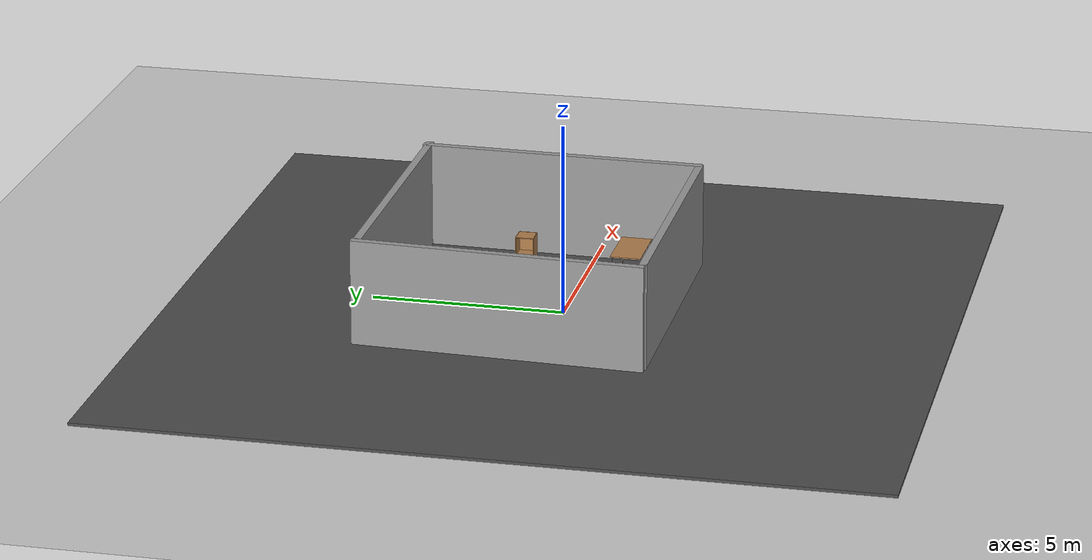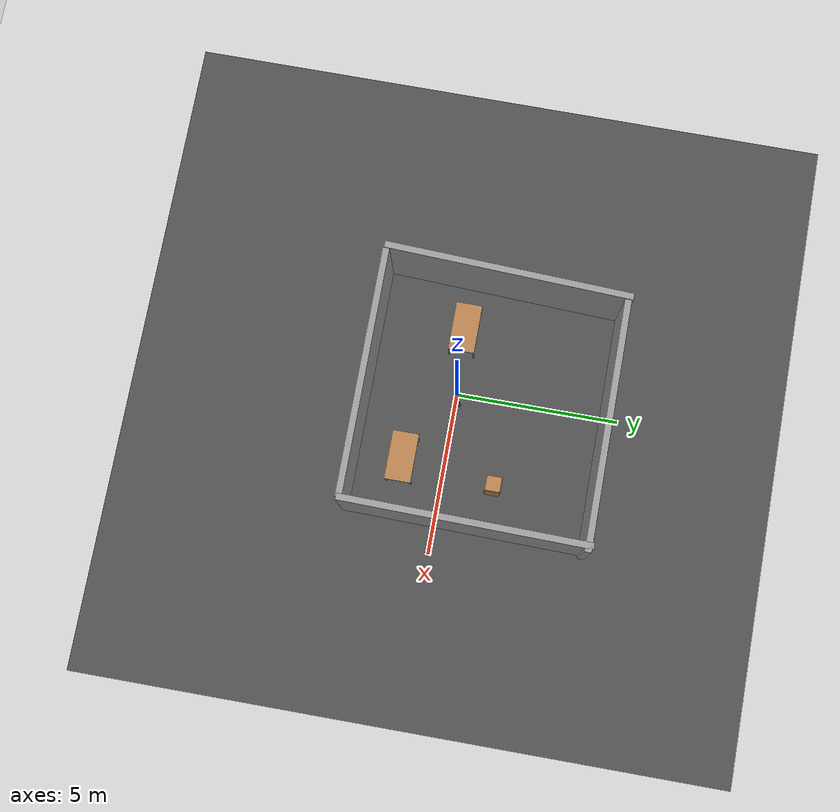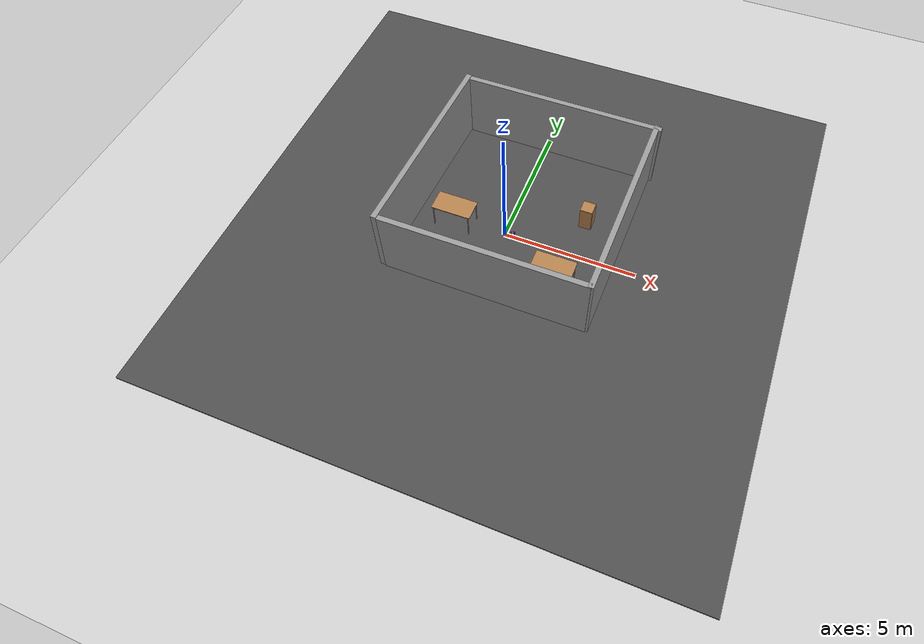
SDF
<sdf version="1.7">
 <world name="default">
  <light name="sun" type="directional">
   <pose>0 0 10 0 -0 0</pose>
   <diffuse>0.8 0.8 0.8 1</diffuse>
   <specular>0.2 0.2 0.2 1</specular>
   <attenuation>
    <range>1000</range>
    <constant>0.9</constant>
    <linear>0.01</linear>
    <quadratic>0.001</quadratic>
   </attenuation>
   <direction>-0.5 0.1 -0.9</direction>
   <spot><inner_angle>0</inner_angle><outer_angle>0</outer_angle><falloff>0</falloff></spot>
  </light>
  <model name="ground_plane">
   <static>1</static>
   <link name="link">
    <collision name="collision">
     <geometry><plane><normal>0 0 1</normal><size>100 100</size></plane></geometry>
     <surface>
      <contact><collide_bitmask>65535</collide_bitmask></contact>
      <friction><ode><mu>100</mu><mu2>50</mu2></ode></friction>
     </surface>
    </collision>
    <visual name="visual">
     <cast_shadows>0</cast_shadows>
     <geometry><plane><normal>0 0 1</normal><size>100 100</size></plane></geometry>
     <material>
      <script><uri>file://media/materials/scripts/gazebo.material</uri><name>Gazebo/Grey</name></script>
     </material>
    </visual>
   </link>
  </model>
  <gravity>0 0 -9.8</gravity>
  <magnetic_field>6e-06 2.3e-05 -4.2e-05</magnetic_field>
  <atmosphere type="adiabatic"/>
  <physics type="ode">
   <max_step_size>0.001</max_step_size>
   <real_time_factor>1</real_time_factor>
   <real_time_update_rate>1000</real_time_update_rate>
  </physics>
  <scene><ambient>0.4 0.4 0.4 1</ambient><background>0.7 0.7 0.7 1</background><shadows>1</shadows></scene>
  <audio><device>default</device></audio>
  <spherical_coordinates>
   <surface_model>EARTH_WGS84</surface_model>
   <latitude_deg>0</latitude_deg>
   <longitude_deg>0</longitude_deg>
   <elevation>0</elevation>
   <heading_deg>0</heading_deg>
  </spherical_coordinates>
  <model name="my_bot">
   <link name="base_link">
    <inertial>
     <pose>0.061451 0 0.033855 0 -0 0</pose>
     <mass>0.52001</mass>
     <inertia>
      <ixx>0.00120775</ixx>
      <ixy>0</ixy>
      <ixz>0.00017017</ixz>
      <iyy>0.00539343</iyy>
      <iyz>0</iyz>
      <izz>0.00617482</izz>
     </inertia>
    </inertial>
    <collision name="base_link_fixed_joint_lump__chassis_collision">
     <pose>0.04391 0 0.0346 0 -0 0</pose>
     <geometry><box><size>0.16782 0.154 0.0692</size></box></geometry>
    </collision>
    <collision name="base_link_fixed_joint_lump__caster_wheel_collision_1">
     <pose>0.5 0 0.0152 0 -0 0</pose>
     <geometry><sphere><radius>0.04</radius></sphere></geometry>
     <surface><friction><ode><mu>0.001</mu><mu2>0.001</mu2></ode></friction></surface>
    </collision>
    <collision name="base_link_fixed_joint_lump__laser_frame_collision_2">
     <pose>0.025 0 0.0692 0 -0 3.14159</pose>
     <geometry><cylinder><length>0.04</length><radius>0.05</radius></cylinder></geometry>
    </collision>
    <visual name="base_link_fixed_joint_lump__chassis_visual">
     <pose>0.04391 0 0.0346 0 -0 0</pose>
     <geometry><box><size>0.16782 0.154 0.0692</size></box></geometry>
     <material>
      <script><name>Gazebo/Black</name><uri>file://media/materials/scripts/gazebo.material</uri></script>
     </material>
    </visual>
    <visual name="base_link_fixed_joint_lump__laser_frame_visual_1">
     <pose>0.025 0 0.0692 0 -0 3.14159</pose>
     <geometry><cylinder><length>0.04</length><radius>0.05</radius></cylinder></geometry>
     <material>
      <script><name>Gazebo/Purple</name><uri>file://media/materials/scripts/gazebo.material</uri></script>
     </material>
    </visual>
    <sensor name="laser" type="ray">
     <visualize>1</visualize>
     <update_rate>10</update_rate>
     <ray>
      <scan>
       <horizontal>
        <samples>360</samples>
        <min_angle>-3.14</min_angle>
        <max_angle>3.14</max_angle>
        <resolution>1</resolution>
       </horizontal>
       <vertical><samples>1</samples><min_angle>0</min_angle><max_angle>0</max_angle></vertical>
      </scan>
      <range><min>0.3</min><max>12</max></range>
     </ray>
     <plugin name="laser_controller" filename="libgazebo_ros_ray_sensor.so">
      <ros><argument>~/out:=scan</argument></ros>
      <output_type>sensor_msgs/LaserScan</output_type>
      <frame_name>laser_frame</frame_name>
     </plugin>
     <pose>0.025 0 0.0692 0 -0 3.14159</pose>
    </sensor>
   </link>
   <joint name="left_wheel_joint" type="revolute">
    <pose relative_to="base_link">0 0.077 0 -1.5708 0 0</pose>
    <parent>base_link</parent>
    <child>left_wheel</child>
    <axis>
     <xyz>0 0 1</xyz>
     <limit><lower>-1e+16</lower><upper>1e+16</upper></limit>
     <dynamics><spring_reference>0</spring_reference><spring_stiffness>0</spring_stiffness></dynamics>
    </axis>
   </joint>
   <link name="left_wheel">
    <pose relative_to="left_wheel_joint">0 0 0 0 -0 0</pose>
    <inertial>
     <mass>0.09</mass>
     <inertia>
      <ixx>2.20803e-05</ixx>
      <ixy>0</ixy>
      <ixz>0</ixz>
      <iyy>2.20803e-05</iyy>
      <iyz>0</iyz>
      <izz>2.76768e-05</izz>
     </inertia>
    </inertial>
    <collision name="left_wheel_collision">
     <geometry><sphere><radius>0.0248</radius></sphere></geometry>
    </collision>
    <visual name="left_wheel_visual">
     <geometry><cylinder><length>0.03315</length><radius>0.0248</radius></cylinder></geometry>
     <material>
      <script><name>Gazebo/Red</name><uri>file://media/materials/scripts/gazebo.material</uri></script>
     </material>
    </visual>
   </link>
   <joint name="right_wheel_joint" type="revolute">
    <pose relative_to="base_link">0 -0.077 0 1.5708 -0 0</pose>
    <parent>base_link</parent>
    <child>right_wheel</child>
    <axis>
     <xyz>0 0 -1</xyz>
     <limit><lower>-1e+16</lower><upper>1e+16</upper></limit>
     <dynamics><spring_reference>0</spring_reference><spring_stiffness>0</spring_stiffness></dynamics>
    </axis>
   </joint>
   <link name="right_wheel">
    <pose relative_to="right_wheel_joint">0 0 0 0 -0 0</pose>
    <inertial>
     <mass>0.09</mass>
     <inertia>
      <ixx>2.20803e-05</ixx>
      <ixy>0</ixy>
      <ixz>0</ixz>
      <iyy>2.20803e-05</iyy>
      <iyz>0</iyz>
      <izz>2.76768e-05</izz>
     </inertia>
    </inertial>
    <collision name="right_wheel_collision">
     <geometry><sphere><radius>0.0248</radius></sphere></geometry>
    </collision>
    <visual name="right_wheel_visual">
     <geometry><cylinder><length>0.03315</length><radius>0.0248</radius></cylinder></geometry>
     <material>
      <script><name>Gazebo/Red</name><uri>file://media/materials/scripts/gazebo.material</uri></script>
     </material>
    </visual>
   </link>
   <static>0</static>
   <plugin name="gazebo_ros2_control" filename="libgazebo_ros2_control.so">
    <parameters>/home/alex/dev_flag/install/flag_robot/share/flag_robot/config/my_controllers.yaml</parameters>
    <parameters>/home/alex/dev_flag/install/flag_robot/share/flag_robot/config/gaz_ros2_ctl_use_sim.yaml</parameters>
   </plugin>
   <pose>0.269558 0.059827 0.074797 -4.3e-05 -7e-06 0.441384</pose>
  </model>
  <model name="asphalt_plane">
   <static>1</static>
   <link name="link">
    <collision name="collision"><geometry><box><size>20 20 0.1</size></box></geometry></collision>
    <visual name="visual">
     <cast_shadows>0</cast_shadows>
     <geometry><box><size>20 20 0.1</size></box></geometry>
     <material>
      <script>
       <uri>model://asphalt_plane/materials/scripts</uri>
       <uri>model://asphalt_plane/materials/textures</uri>
       <name>vrc/asphalt</name>
      </script>
     </material>
    </visual>
   </link>
   <pose>0.280808 -0.007636 0 0 -0 0</pose>
  </model>
  <model name="grey_wall">
   <static>1</static>
   <link name="link">
    <pose>0 0 1.4 0 -0 0</pose>
    <collision name="collision"><geometry><box><size>7.5 0.2 2.8</size></box></geometry></collision>
    <visual name="visual">
     <cast_shadows>0</cast_shadows>
     <geometry><box><size>7.5 0.2 2.8</size></box></geometry>
     <material>
      <script>
       <uri>model://grey_wall/materials/scripts</uri>
       <uri>model://grey_wall/materials/textures</uri>
       <name>vrc/grey_wall</name>
      </script>
     </material>
    </visual>
   </link>
   <pose>0.287194 -2.74373 0 0 -0 0</pose>
  </model>
  <model name="grey_wall_0">
   <static>1</static>
   <link name="link">
    <pose>0 0 1.4 0 -0 0</pose>
    <collision name="collision"><geometry><box><size>7.5 0.2 2.8</size></box></geometry></collision>
    <visual name="visual">
     <cast_shadows>0</cast_shadows>
     <geometry><box><size>7.5 0.2 2.8</size></box></geometry>
     <material>
      <script>
       <uri>model://grey_wall/materials/scripts</uri>
       <uri>model://grey_wall/materials/textures</uri>
       <name>vrc/grey_wall</name>
      </script>
     </material>
    </visual>
   </link>
   <pose>0.588944 4.53991 0 0 -0 0</pose>
  </model>
  <model name="grey_wall_1">
   <static>1</static>
   <link name="link">
    <pose>0 0 1.4 0 -0 0</pose>
    <collision name="collision"><geometry><box><size>7.5 0.2 2.8</size></box></geometry></collision>
    <visual name="visual">
     <cast_shadows>0</cast_shadows>
     <geometry><box><size>7.5 0.2 2.8</size></box></geometry>
     <material>
      <script>
       <uri>model://grey_wall/materials/scripts</uri>
       <uri>model://grey_wall/materials/textures</uri>
       <name>vrc/grey_wall</name>
      </script>
     </material>
    </visual>
   </link>
   <pose>4.08195 0.939318 0 0 0 -1.58705</pose>
  </model>
  <model name="grey_wall_2">
   <static>1</static>
   <link name="link">
    <pose>0 0 1.4 0 -0 0</pose>
    <collision name="collision"><geometry><box><size>7.5 0.2 2.8</size></box></geometry></collision>
    <visual name="visual">
     <cast_shadows>0</cast_shadows>
     <geometry><box><size>7.5 0.2 2.8</size></box></geometry>
     <material>
      <script>
       <uri>model://grey_wall/materials/scripts</uri>
       <uri>model://grey_wall/materials/textures</uri>
       <name>vrc/grey_wall</name>
      </script>
     </material>
    </visual>
   </link>
   <pose>-3.42579 0.936848 0 0 0 -1.61209</pose>
  </model>
  <model name="table">
   <static>1</static>
   <link name="link">
    <collision name="surface">
     <pose>0 0 1 0 -0 0</pose>
     <geometry><box><size>1.5 0.8 0.03</size></box></geometry>
     <surface><friction><ode><mu>0.6</mu><mu2>0.6</mu2></ode></friction></surface>
    </collision>
    <visual name="visual1">
     <pose>0 0 1 0 -0 0</pose>
     <geometry><box><size>1.5 0.8 0.03</size></box></geometry>
     <material>
      <script><uri>file://media/materials/scripts/gazebo.material</uri><name>Gazebo/Wood</name></script>
     </material>
    </visual>
    <collision name="front_left_leg">
     <pose>0.68 0.38 0.5 0 -0 0</pose>
     <geometry><cylinder><radius>0.02</radius><length>1</length></cylinder></geometry>
    </collision>
    <visual name="front_left_leg">
     <pose>0.68 0.38 0.5 0 -0 0</pose>
     <geometry><cylinder><radius>0.02</radius><length>1</length></cylinder></geometry>
     <material>
      <script><uri>file://media/materials/scripts/gazebo.material</uri><name>Gazebo/Grey</name></script>
     </material>
    </visual>
    <collision name="front_right_leg">
     <pose>0.68 -0.38 0.5 0 -0 0</pose>
     <geometry><cylinder><radius>0.02</radius><length>1</length></cylinder></geometry>
    </collision>
    <visual name="front_right_leg">
     <pose>0.68 -0.38 0.5 0 -0 0</pose>
     <geometry><cylinder><radius>0.02</radius><length>1</length></cylinder></geometry>
     <material>
      <script><uri>file://media/materials/scripts/gazebo.material</uri><name>Gazebo/Grey</name></script>
     </material>
    </visual>
    <collision name="back_right_leg">
     <pose>-0.68 -0.38 0.5 0 -0 0</pose>
     <geometry><cylinder><radius>0.02</radius><length>1</length></cylinder></geometry>
    </collision>
    <visual name="back_right_leg">
     <pose>-0.68 -0.38 0.5 0 -0 0</pose>
     <geometry><cylinder><radius>0.02</radius><length>1</length></cylinder></geometry>
     <material>
      <script><uri>file://media/materials/scripts/gazebo.material</uri><name>Gazebo/Grey</name></script>
     </material>
    </visual>
    <collision name="back_left_leg">
     <pose>-0.68 0.38 0.5 0 -0 0</pose>
     <geometry><cylinder><radius>0.02</radius><length>1</length></cylinder></geometry>
    </collision>
    <visual name="back_left_leg">
     <pose>-0.68 0.38 0.5 0 -0 0</pose>
     <geometry><cylinder><radius>0.02</radius><length>1</length></cylinder></geometry>
     <material>
      <script><uri>file://media/materials/scripts/gazebo.material</uri><name>Gazebo/Grey</name></script>
     </material>
    </visual>
   </link>
   <pose>2.31933 -1.28061 0 0 -0 0</pose>
  </model>
  <model name="cabinet">
   <static>1</static>
   <link name="cabinet_bottom_plate">
    <inertial>
     <pose>0 0 -1 0 -0 0</pose>
     <inertia><ixx>2.05</ixx><ixy>0</ixy><ixz>0</ixz><iyy>2.05</iyy><iyz>0</iyz><izz>2.05</izz></inertia>
     <mass>25</mass>
    </inertial>
    <collision name="cabinet_bottom_plate_geom">
     <pose>0 0 0.01 0 -0 0</pose>
     <geometry><box><size>0.45 0.45 0.02</size></box></geometry>
    </collision>
    <visual name="cabinet_bottom_plate_geom_visual">
     <pose>0 0 0.01 0 -0 0</pose>
     <geometry><box><size>0.45 0.45 0.02</size></box></geometry>
     <material>
      <script><uri>file://media/materials/scripts/gazebo.material</uri><name>Gazebo/Wood</name></script>
     </material>
    </visual>
    <collision name="cabinet_bottom_plate_geom_cabinet_back_plate">
     <pose>0.235 0 0.51 0 -0 0</pose>
     <geometry><box><size>0.02 0.45 1.02</size></box></geometry>
    </collision>
    <visual name="cabinet_bottom_plate_geom_cabinet_back_plate_visual">
     <pose>0.235 0 0.51 0 -0 0</pose>
     <geometry><box><size>0.02 0.45 1.02</size></box></geometry>
     <material>
      <script><uri>file://media/materials/scripts/gazebo.material</uri><name>Gazebo/Wood</name></script>
     </material>
    </visual>
    <collision name="cabinet_bottom_plate_geom_cabinet_left_plate">
     <pose>0 0.235 0.51 0 -0 0</pose>
     <geometry><box><size>0.45 0.02 1.02</size></box></geometry>
    </collision>
    <visual name="cabinet_bottom_plate_geom_cabinet_left_plate_visual">
     <pose>0 0.235 0.51 0 -0 0</pose>
     <geometry><box><size>0.45 0.02 1.02</size></box></geometry>
     <material>
      <script><uri>file://media/materials/scripts/gazebo.material</uri><name>Gazebo/Wood</name></script>
     </material>
    </visual>
    <collision name="cabinet_bottom_plate_geom_cabinet_middle_plate">
     <pose>0 0 0.51 0 -0 0</pose>
     <geometry><box><size>0.45 0.45 0.02</size></box></geometry>
    </collision>
    <visual name="cabinet_bottom_plate_geom_cabinet_middle_plate_visual">
     <pose>0 0 0.51 0 -0 0</pose>
     <geometry><box><size>0.45 0.45 0.02</size></box></geometry>
     <material>
      <script><uri>file://media/materials/scripts/gazebo.material</uri><name>Gazebo/Wood</name></script>
     </material>
    </visual>
    <collision name="cabinet_bottom_plate_geom_cabinet_right_plate">
     <pose>0 -0.235 0.51 0 -0 0</pose>
     <geometry><box><size>0.45 0.02 1.02</size></box></geometry>
    </collision>
    <visual name="cabinet_bottom_plate_geom_cabinet_right_plate_visual">
     <pose>0 -0.235 0.51 0 -0 0</pose>
     <geometry><box><size>0.45 0.02 1.02</size></box></geometry>
     <material>
      <script><uri>file://media/materials/scripts/gazebo.material</uri><name>Gazebo/Wood</name></script>
     </material>
    </visual>
    <collision name="cabinet_bottom_plate_geom_cabinet_top_plate">
     <pose>0 0 1.01 0 -0 0</pose>
     <geometry><box><size>0.45 0.45 0.02</size></box></geometry>
    </collision>
    <visual name="cabinet_bottom_plate_geom_cabinet_top_plate_visual">
     <pose>0 0 1.01 0 -0 0</pose>
     <geometry><box><size>0.45 0.45 0.02</size></box></geometry>
     <material>
      <script><uri>file://media/materials/scripts/gazebo.material</uri><name>Gazebo/Wood</name></script>
     </material>
    </visual>
   </link>
   <pose>2.65362 1.57109 0 0 -0 0</pose>
  </model>
  <model name="table_0">
   <static>1</static>
   <link name="link">
    <collision name="surface">
     <pose>0 0 1 0 -0 0</pose>
     <geometry><box><size>1.5 0.8 0.03</size></box></geometry>
     <surface><friction><ode><mu>0.6</mu><mu2>0.6</mu2></ode></friction></surface>
    </collision>
    <visual name="visual1">
     <pose>0 0 1 0 -0 0</pose>
     <geometry><box><size>1.5 0.8 0.03</size></box></geometry>
     <material>
      <script><uri>file://media/materials/scripts/gazebo.material</uri><name>Gazebo/Wood</name></script>
     </material>
    </visual>
    <collision name="front_left_leg">
     <pose>0.68 0.38 0.5 0 -0 0</pose>
     <geometry><cylinder><radius>0.02</radius><length>1</length></cylinder></geometry>
    </collision>
    <visual name="front_left_leg">
     <pose>0.68 0.38 0.5 0 -0 0</pose>
     <geometry><cylinder><radius>0.02</radius><length>1</length></cylinder></geometry>
     <material>
      <script><uri>file://media/materials/scripts/gazebo.material</uri><name>Gazebo/Grey</name></script>
     </material>
    </visual>
    <collision name="front_right_leg">
     <pose>0.68 -0.38 0.5 0 -0 0</pose>
     <geometry><cylinder><radius>0.02</radius><length>1</length></cylinder></geometry>
    </collision>
    <visual name="front_right_leg">
     <pose>0.68 -0.38 0.5 0 -0 0</pose>
     <geometry><cylinder><radius>0.02</radius><length>1</length></cylinder></geometry>
     <material>
      <script><uri>file://media/materials/scripts/gazebo.material</uri><name>Gazebo/Grey</name></script>
     </material>
    </visual>
    <collision name="back_right_leg">
     <pose>-0.68 -0.38 0.5 0 -0 0</pose>
     <geometry><cylinder><radius>0.02</radius><length>1</length></cylinder></geometry>
    </collision>
    <visual name="back_right_leg">
     <pose>-0.68 -0.38 0.5 0 -0 0</pose>
     <geometry><cylinder><radius>0.02</radius><length>1</length></cylinder></geometry>
     <material>
      <script><uri>file://media/materials/scripts/gazebo.material</uri><name>Gazebo/Grey</name></script>
     </material>
    </visual>
    <collision name="back_left_leg">
     <pose>-0.68 0.38 0.5 0 -0 0</pose>
     <geometry><cylinder><radius>0.02</radius><length>1</length></cylinder></geometry>
    </collision>
    <visual name="back_left_leg">
     <pose>-0.68 0.38 0.5 0 -0 0</pose>
     <geometry><cylinder><radius>0.02</radius><length>1</length></cylinder></geometry>
     <material>
      <script><uri>file://media/materials/scripts/gazebo.material</uri><name>Gazebo/Grey</name></script>
     </material>
    </visual>
   </link>
   <pose>-1.92356 -0.089341 0 0 -0 0</pose>
  </model>
 </world>
</sdf>
